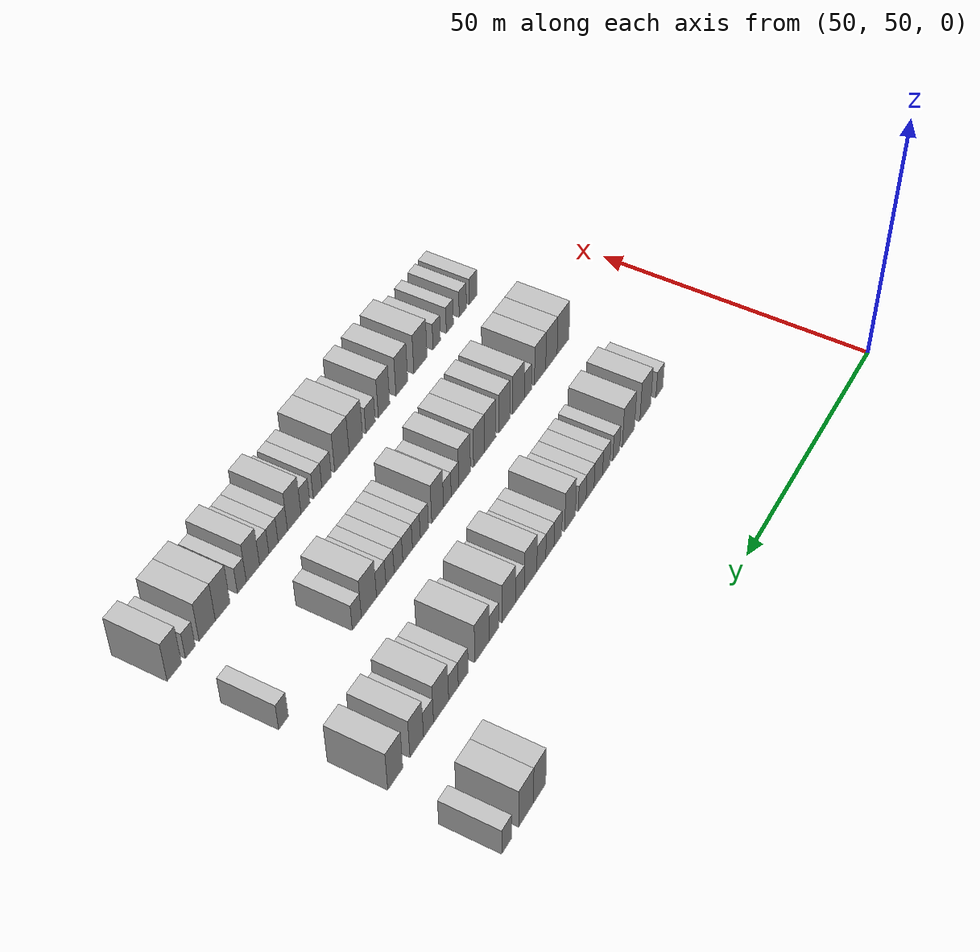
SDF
<sdf version="1.6">
 <world name="default">
  <model name="building_474">
   <static>1</static>
   <pose>63.0000 153.1992 0 0.000000 0.000000 0.000000</pose>
   <link name="link">
    <pose>0 0 4.50 0 0 0</pose>
    <collision name="collision"><geometry><box><size>10.0000 3.6725 9.0000</size></box></geometry></collision>
    <visual name="visual">
     <cast_shadows>0</cast_shadows>
     <geometry><box><size>10.0000 3.6725 9.0000</size></box></geometry>
     <material>
      <script>
       <uri>model://HANNAS_wall/materials/scripts</uri>
       <uri>model://HANNAS_wall/materials/textures</uri>
       <name>vrc/HANNAS_wall</name>
      </script>
     </material>
    </visual>
   </link>
  </model>
  <model name="building_475">
   <static>1</static>
   <pose>63.0000 157.1830 0 0.000000 0.000000 0.000000</pose>
   <link name="link">
    <pose>0 0 4.50 0 0 0</pose>
    <collision name="collision"><geometry><box><size>10.0000 4.2952 9.0000</size></box></geometry></collision>
    <visual name="visual">
     <cast_shadows>0</cast_shadows>
     <geometry><box><size>10.0000 4.2952 9.0000</size></box></geometry>
     <material>
      <script>
       <uri>model://HANNAS_wall/materials/scripts</uri>
       <uri>model://HANNAS_wall/materials/textures</uri>
       <name>vrc/HANNAS_wall</name>
      </script>
     </material>
    </visual>
   </link>
  </model>
  <model name="building_476">
   <static>1</static>
   <pose>63.0000 162.7637 0 0.000000 0.000000 0.000000</pose>
   <link name="link">
    <pose>0 0 3.00 0 0 0</pose>
    <collision name="collision"><geometry><box><size>10.0000 2.8661 6.0000</size></box></geometry></collision>
    <visual name="visual">
     <cast_shadows>0</cast_shadows>
     <geometry><box><size>10.0000 2.8661 6.0000</size></box></geometry>
     <material>
      <script>
       <uri>model://HANNAS_wall/materials/scripts</uri>
       <uri>model://HANNAS_wall/materials/textures</uri>
       <name>vrc/HANNAS_wall</name>
      </script>
     </material>
    </visual>
   </link>
  </model>
  <model name="building_628">
   <static>1</static>
   <pose>82.0000 75.2691 0 0.000000 0.000000 0.000000</pose>
   <link name="link">
    <pose>0 0 3.00 0 0 0</pose>
    <collision name="collision"><geometry><box><size>10.0000 2.6385 6.0000</size></box></geometry></collision>
    <visual name="visual">
     <cast_shadows>0</cast_shadows>
     <geometry><box><size>10.0000 2.6385 6.0000</size></box></geometry>
     <material>
      <script>
       <uri>model://HANNAS_wall/materials/scripts</uri>
       <uri>model://HANNAS_wall/materials/textures</uri>
       <name>vrc/HANNAS_wall</name>
      </script>
     </material>
    </visual>
   </link>
  </model>
  <model name="building_629">
   <static>1</static>
   <pose>82.0000 80.6000 0 0.000000 0.000000 0.000000</pose>
   <link name="link">
    <pose>0 0 4.50 0 0 0</pose>
    <collision name="collision"><geometry><box><size>10.0000 4.0234 9.0000</size></box></geometry></collision>
    <visual name="visual">
     <cast_shadows>0</cast_shadows>
     <geometry><box><size>10.0000 4.0234 9.0000</size></box></geometry>
     <material>
      <script>
       <uri>model://HANNAS_wall/materials/scripts</uri>
       <uri>model://HANNAS_wall/materials/textures</uri>
       <name>vrc/HANNAS_wall</name>
      </script>
     </material>
    </visual>
   </link>
  </model>
  <model name="building_630">
   <static>1</static>
   <pose>82.0000 86.8301 0 0.000000 0.000000 0.000000</pose>
   <link name="link">
    <pose>0 0 4.50 0 0 0</pose>
    <collision name="collision"><geometry><box><size>10.0000 4.4367 9.0000</size></box></geometry></collision>
    <visual name="visual">
     <cast_shadows>0</cast_shadows>
     <geometry><box><size>10.0000 4.4367 9.0000</size></box></geometry>
     <material>
      <script>
       <uri>model://HANNAS_wall/materials/scripts</uri>
       <uri>model://HANNAS_wall/materials/textures</uri>
       <name>vrc/HANNAS_wall</name>
      </script>
     </material>
    </visual>
   </link>
  </model>
  <model name="building_631">
   <static>1</static>
   <pose>82.0000 91.2812 0 0.000000 0.000000 0.000000</pose>
   <link name="link">
    <pose>0 0 3.00 0 0 0</pose>
    <collision name="collision"><geometry><box><size>10.0000 2.4657 6.0000</size></box></geometry></collision>
    <visual name="visual">
     <cast_shadows>0</cast_shadows>
     <geometry><box><size>10.0000 2.4657 6.0000</size></box></geometry>
     <material>
      <script>
       <uri>model://HANNAS_wall/materials/scripts</uri>
       <uri>model://HANNAS_wall/materials/textures</uri>
       <name>vrc/HANNAS_wall</name>
      </script>
     </material>
    </visual>
   </link>
  </model>
  <model name="building_632">
   <static>1</static>
   <pose>82.0000 94.8271 0 0.000000 0.000000 0.000000</pose>
   <link name="link">
    <pose>0 0 3.00 0 0 0</pose>
    <collision name="collision"><geometry><box><size>10.0000 2.6260 6.0000</size></box></geometry></collision>
    <visual name="visual">
     <cast_shadows>0</cast_shadows>
     <geometry><box><size>10.0000 2.6260 6.0000</size></box></geometry>
     <material>
      <script>
       <uri>model://HANNAS_wall/materials/scripts</uri>
       <uri>model://HANNAS_wall/materials/textures</uri>
       <name>vrc/HANNAS_wall</name>
      </script>
     </material>
    </visual>
   </link>
  </model>
  <model name="building_633">
   <static>1</static>
   <pose>82.0000 97.6266 0 0.000000 0.000000 0.000000</pose>
   <link name="link">
    <pose>0 0 3.00 0 0 0</pose>
    <collision name="collision"><geometry><box><size>10.0000 2.9730 6.0000</size></box></geometry></collision>
    <visual name="visual">
     <cast_shadows>0</cast_shadows>
     <geometry><box><size>10.0000 2.9730 6.0000</size></box></geometry>
     <material>
      <script>
       <uri>model://HANNAS_wall/materials/scripts</uri>
       <uri>model://HANNAS_wall/materials/textures</uri>
       <name>vrc/HANNAS_wall</name>
      </script>
     </material>
    </visual>
   </link>
  </model>
  <model name="building_634">
   <static>1</static>
   <pose>82.0000 100.5078 0 0.000000 0.000000 0.000000</pose>
   <link name="link">
    <pose>0 0 3.00 0 0 0</pose>
    <collision name="collision"><geometry><box><size>10.0000 2.7895 6.0000</size></box></geometry></collision>
    <visual name="visual">
     <cast_shadows>0</cast_shadows>
     <geometry><box><size>10.0000 2.7895 6.0000</size></box></geometry>
     <material>
      <script>
       <uri>model://HANNAS_wall/materials/scripts</uri>
       <uri>model://HANNAS_wall/materials/textures</uri>
       <name>vrc/HANNAS_wall</name>
      </script>
     </material>
    </visual>
   </link>
  </model>
  <model name="building_635">
   <static>1</static>
   <pose>82.0000 103.2406 0 0.000000 0.000000 0.000000</pose>
   <link name="link">
    <pose>0 0 3.00 0 0 0</pose>
    <collision name="collision"><geometry><box><size>10.0000 2.6761 6.0000</size></box></geometry></collision>
    <visual name="visual">
     <cast_shadows>0</cast_shadows>
     <geometry><box><size>10.0000 2.6761 6.0000</size></box></geometry>
     <material>
      <script>
       <uri>model://HANNAS_wall/materials/scripts</uri>
       <uri>model://HANNAS_wall/materials/textures</uri>
       <name>vrc/HANNAS_wall</name>
      </script>
     </material>
    </visual>
   </link>
  </model>
  <model name="building_636">
   <static>1</static>
   <pose>82.0000 107.3938 0 0.000000 0.000000 0.000000</pose>
   <link name="link">
    <pose>0 0 4.50 0 0 0</pose>
    <collision name="collision"><geometry><box><size>10.0000 3.6304 9.0000</size></box></geometry></collision>
    <visual name="visual">
     <cast_shadows>0</cast_shadows>
     <geometry><box><size>10.0000 3.6304 9.0000</size></box></geometry>
     <material>
      <script>
       <uri>model://HANNAS_wall/materials/scripts</uri>
       <uri>model://HANNAS_wall/materials/textures</uri>
       <name>vrc/HANNAS_wall</name>
      </script>
     </material>
    </visual>
   </link>
  </model>
  <model name="building_637">
   <static>1</static>
   <pose>82.0000 111.5008 0 0.000000 0.000000 0.000000</pose>
   <link name="link">
    <pose>0 0 3.00 0 0 0</pose>
    <collision name="collision"><geometry><box><size>10.0000 2.5835 6.0000</size></box></geometry></collision>
    <visual name="visual">
     <cast_shadows>0</cast_shadows>
     <geometry><box><size>10.0000 2.5835 6.0000</size></box></geometry>
     <material>
      <script>
       <uri>model://HANNAS_wall/materials/scripts</uri>
       <uri>model://HANNAS_wall/materials/textures</uri>
       <name>vrc/HANNAS_wall</name>
      </script>
     </material>
    </visual>
   </link>
  </model>
  <model name="building_638">
   <static>1</static>
   <pose>82.0000 114.1459 0 0.000000 0.000000 0.000000</pose>
   <link name="link">
    <pose>0 0 3.00 0 0 0</pose>
    <collision name="collision"><geometry><box><size>10.0000 2.7066 6.0000</size></box></geometry></collision>
    <visual name="visual">
     <cast_shadows>0</cast_shadows>
     <geometry><box><size>10.0000 2.7066 6.0000</size></box></geometry>
     <material>
      <script>
       <uri>model://HANNAS_wall/materials/scripts</uri>
       <uri>model://HANNAS_wall/materials/textures</uri>
       <name>vrc/HANNAS_wall</name>
      </script>
     </material>
    </visual>
   </link>
  </model>
  <model name="building_639">
   <static>1</static>
   <pose>82.0000 116.9561 0 0.000000 0.000000 0.000000</pose>
   <link name="link">
    <pose>0 0 3.00 0 0 0</pose>
    <collision name="collision"><geometry><box><size>10.0000 2.9138 6.0000</size></box></geometry></collision>
    <visual name="visual">
     <cast_shadows>0</cast_shadows>
     <geometry><box><size>10.0000 2.9138 6.0000</size></box></geometry>
     <material>
      <script>
       <uri>model://HANNAS_wall/materials/scripts</uri>
       <uri>model://HANNAS_wall/materials/textures</uri>
       <name>vrc/HANNAS_wall</name>
      </script>
     </material>
    </visual>
   </link>
  </model>
  <model name="building_640">
   <static>1</static>
   <pose>82.0000 120.3952 0 0.000000 0.000000 0.000000</pose>
   <link name="link">
    <pose>0 0 4.50 0 0 0</pose>
    <collision name="collision"><geometry><box><size>10.0000 3.9644 9.0000</size></box></geometry></collision>
    <visual name="visual">
     <cast_shadows>0</cast_shadows>
     <geometry><box><size>10.0000 3.9644 9.0000</size></box></geometry>
     <material>
      <script>
       <uri>model://HANNAS_wall/materials/scripts</uri>
       <uri>model://HANNAS_wall/materials/textures</uri>
       <name>vrc/HANNAS_wall</name>
      </script>
     </material>
    </visual>
   </link>
  </model>
  <model name="building_641">
   <static>1</static>
   <pose>82.0000 123.7570 0 0.000000 0.000000 0.000000</pose>
   <link name="link">
    <pose>0 0 3.00 0 0 0</pose>
    <collision name="collision"><geometry><box><size>10.0000 2.7593 6.0000</size></box></geometry></collision>
    <visual name="visual">
     <cast_shadows>0</cast_shadows>
     <geometry><box><size>10.0000 2.7593 6.0000</size></box></geometry>
     <material>
      <script>
       <uri>model://HANNAS_wall/materials/scripts</uri>
       <uri>model://HANNAS_wall/materials/textures</uri>
       <name>vrc/HANNAS_wall</name>
      </script>
     </material>
    </visual>
   </link>
  </model>
  <model name="building_642">
   <static>1</static>
   <pose>82.0000 127.3009 0 0.000000 0.000000 0.000000</pose>
   <link name="link">
    <pose>0 0 4.50 0 0 0</pose>
    <collision name="collision"><geometry><box><size>10.0000 4.3286 9.0000</size></box></geometry></collision>
    <visual name="visual">
     <cast_shadows>0</cast_shadows>
     <geometry><box><size>10.0000 4.3286 9.0000</size></box></geometry>
     <material>
      <script>
       <uri>model://HANNAS_wall/materials/scripts</uri>
       <uri>model://HANNAS_wall/materials/textures</uri>
       <name>vrc/HANNAS_wall</name>
      </script>
     </material>
    </visual>
   </link>
  </model>
  <model name="building_643">
   <static>1</static>
   <pose>82.0000 131.9573 0 0.000000 0.000000 0.000000</pose>
   <link name="link">
    <pose>0 0 3.00 0 0 0</pose>
    <collision name="collision"><geometry><box><size>10.0000 2.9843 6.0000</size></box></geometry></collision>
    <visual name="visual">
     <cast_shadows>0</cast_shadows>
     <geometry><box><size>10.0000 2.9843 6.0000</size></box></geometry>
     <material>
      <script>
       <uri>model://HANNAS_wall/materials/scripts</uri>
       <uri>model://HANNAS_wall/materials/textures</uri>
       <name>vrc/HANNAS_wall</name>
      </script>
     </material>
    </visual>
   </link>
  </model>
  <model name="building_644">
   <static>1</static>
   <pose>82.0000 135.6350 0 0.000000 0.000000 0.000000</pose>
   <link name="link">
    <pose>0 0 4.50 0 0 0</pose>
    <collision name="collision"><geometry><box><size>10.0000 4.3710 9.0000</size></box></geometry></collision>
    <visual name="visual">
     <cast_shadows>0</cast_shadows>
     <geometry><box><size>10.0000 4.3710 9.0000</size></box></geometry>
     <material>
      <script>
       <uri>model://HANNAS_wall/materials/scripts</uri>
       <uri>model://HANNAS_wall/materials/textures</uri>
       <name>vrc/HANNAS_wall</name>
      </script>
     </material>
    </visual>
   </link>
  </model>
  <model name="building_645">
   <static>1</static>
   <pose>82.0000 141.3121 0 0.000000 0.000000 0.000000</pose>
   <link name="link">
    <pose>0 0 3.00 0 0 0</pose>
    <collision name="collision"><geometry><box><size>10.0000 2.9831 6.0000</size></box></geometry></collision>
    <visual name="visual">
     <cast_shadows>0</cast_shadows>
     <geometry><box><size>10.0000 2.9831 6.0000</size></box></geometry>
     <material>
      <script>
       <uri>model://HANNAS_wall/materials/scripts</uri>
       <uri>model://HANNAS_wall/materials/textures</uri>
       <name>vrc/HANNAS_wall</name>
      </script>
     </material>
    </visual>
   </link>
  </model>
  <model name="building_646">
   <static>1</static>
   <pose>82.0000 144.2156 0 0.000000 0.000000 0.000000</pose>
   <link name="link">
    <pose>0 0 3.00 0 0 0</pose>
    <collision name="collision"><geometry><box><size>10.0000 2.8239 6.0000</size></box></geometry></collision>
    <visual name="visual">
     <cast_shadows>0</cast_shadows>
     <geometry><box><size>10.0000 2.8239 6.0000</size></box></geometry>
     <material>
      <script>
       <uri>model://HANNAS_wall/materials/scripts</uri>
       <uri>model://HANNAS_wall/materials/textures</uri>
       <name>vrc/HANNAS_wall</name>
      </script>
     </material>
    </visual>
   </link>
  </model>
  <model name="building_647">
   <static>1</static>
   <pose>82.0000 147.8264 0 0.000000 0.000000 0.000000</pose>
   <link name="link">
    <pose>0 0 4.50 0 0 0</pose>
    <collision name="collision"><geometry><box><size>10.0000 4.3977 9.0000</size></box></geometry></collision>
    <visual name="visual">
     <cast_shadows>0</cast_shadows>
     <geometry><box><size>10.0000 4.3977 9.0000</size></box></geometry>
     <material>
      <script>
       <uri>model://HANNAS_wall/materials/scripts</uri>
       <uri>model://HANNAS_wall/materials/textures</uri>
       <name>vrc/HANNAS_wall</name>
      </script>
     </material>
    </visual>
   </link>
  </model>
  <model name="building_648">
   <static>1</static>
   <pose>82.0000 151.4515 0 0.000000 0.000000 0.000000</pose>
   <link name="link">
    <pose>0 0 3.00 0 0 0</pose>
    <collision name="collision"><geometry><box><size>10.0000 2.8525 6.0000</size></box></geometry></collision>
    <visual name="visual">
     <cast_shadows>0</cast_shadows>
     <geometry><box><size>10.0000 2.8525 6.0000</size></box></geometry>
     <material>
      <script>
       <uri>model://HANNAS_wall/materials/scripts</uri>
       <uri>model://HANNAS_wall/materials/textures</uri>
       <name>vrc/HANNAS_wall</name>
      </script>
     </material>
    </visual>
   </link>
  </model>
  <model name="building_649">
   <static>1</static>
   <pose>82.0000 154.7973 0 0.000000 0.000000 0.000000</pose>
   <link name="link">
    <pose>0 0 4.50 0 0 0</pose>
    <collision name="collision"><geometry><box><size>10.0000 3.8392 9.0000</size></box></geometry></collision>
    <visual name="visual">
     <cast_shadows>0</cast_shadows>
     <geometry><box><size>10.0000 3.8392 9.0000</size></box></geometry>
     <material>
      <script>
       <uri>model://HANNAS_wall/materials/scripts</uri>
       <uri>model://HANNAS_wall/materials/textures</uri>
       <name>vrc/HANNAS_wall</name>
      </script>
     </material>
    </visual>
   </link>
  </model>
  <model name="building_650">
   <static>1</static>
   <pose>82.0000 160.7923 0 0.000000 0.000000 0.000000</pose>
   <link name="link">
    <pose>0 0 4.50 0 0 0</pose>
    <collision name="collision"><geometry><box><size>10.0000 4.1509 9.0000</size></box></geometry></collision>
    <visual name="visual">
     <cast_shadows>0</cast_shadows>
     <geometry><box><size>10.0000 4.1509 9.0000</size></box></geometry>
     <material>
      <script>
       <uri>model://HANNAS_wall/materials/scripts</uri>
       <uri>model://HANNAS_wall/materials/textures</uri>
       <name>vrc/HANNAS_wall</name>
      </script>
     </material>
    </visual>
   </link>
  </model>
  <model name="building_803">
   <static>1</static>
   <pose>101.0000 73.3802 0 0.000000 0.000000 0.000000</pose>
   <link name="link">
    <pose>0 0 4.50 0 0 0</pose>
    <collision name="collision"><geometry><box><size>10.0000 4.3532 9.0000</size></box></geometry></collision>
    <visual name="visual">
     <cast_shadows>0</cast_shadows>
     <geometry><box><size>10.0000 4.3532 9.0000</size></box></geometry>
     <material>
      <script>
       <uri>model://HANNAS_wall/materials/scripts</uri>
       <uri>model://HANNAS_wall/materials/textures</uri>
       <name>vrc/HANNAS_wall</name>
      </script>
     </material>
    </visual>
   </link>
  </model>
  <model name="building_804">
   <static>1</static>
   <pose>101.0000 77.6026 0 0.000000 0.000000 0.000000</pose>
   <link name="link">
    <pose>0 0 4.50 0 0 0</pose>
    <collision name="collision"><geometry><box><size>10.0000 4.0915 9.0000</size></box></geometry></collision>
    <visual name="visual">
     <cast_shadows>0</cast_shadows>
     <geometry><box><size>10.0000 4.0915 9.0000</size></box></geometry>
     <material>
      <script>
       <uri>model://HANNAS_wall/materials/scripts</uri>
       <uri>model://HANNAS_wall/materials/textures</uri>
       <name>vrc/HANNAS_wall</name>
      </script>
     </material>
    </visual>
   </link>
  </model>
  <model name="building_805">
   <static>1</static>
   <pose>101.0000 81.6471 0 0.000000 0.000000 0.000000</pose>
   <link name="link">
    <pose>0 0 4.50 0 0 0</pose>
    <collision name="collision"><geometry><box><size>10.0000 3.9977 9.0000</size></box></geometry></collision>
    <visual name="visual">
     <cast_shadows>0</cast_shadows>
     <geometry><box><size>10.0000 3.9977 9.0000</size></box></geometry>
     <material>
      <script>
       <uri>model://HANNAS_wall/materials/scripts</uri>
       <uri>model://HANNAS_wall/materials/textures</uri>
       <name>vrc/HANNAS_wall</name>
      </script>
     </material>
    </visual>
   </link>
  </model>
  <model name="building_806">
   <static>1</static>
   <pose>101.0000 85.9104 0 0.000000 0.000000 0.000000</pose>
   <link name="link">
    <pose>0 0 3.00 0 0 0</pose>
    <collision name="collision"><geometry><box><size>10.0000 2.5288 6.0000</size></box></geometry></collision>
    <visual name="visual">
     <cast_shadows>0</cast_shadows>
     <geometry><box><size>10.0000 2.5288 6.0000</size></box></geometry>
     <material>
      <script>
       <uri>model://HANNAS_wall/materials/scripts</uri>
       <uri>model://HANNAS_wall/materials/textures</uri>
       <name>vrc/HANNAS_wall</name>
      </script>
     </material>
    </visual>
   </link>
  </model>
  <model name="building_807">
   <static>1</static>
   <pose>101.0000 89.1816 0 0.000000 0.000000 0.000000</pose>
   <link name="link">
    <pose>0 0 4.50 0 0 0</pose>
    <collision name="collision"><geometry><box><size>10.0000 4.0136 9.0000</size></box></geometry></collision>
    <visual name="visual">
     <cast_shadows>0</cast_shadows>
     <geometry><box><size>10.0000 4.0136 9.0000</size></box></geometry>
     <material>
      <script>
       <uri>model://HANNAS_wall/materials/scripts</uri>
       <uri>model://HANNAS_wall/materials/textures</uri>
       <name>vrc/HANNAS_wall</name>
      </script>
     </material>
    </visual>
   </link>
  </model>
  <model name="building_808">
   <static>1</static>
   <pose>101.0000 94.0507 0 0.000000 0.000000 0.000000</pose>
   <link name="link">
    <pose>0 0 4.50 0 0 0</pose>
    <collision name="collision"><geometry><box><size>10.0000 3.7245 9.0000</size></box></geometry></collision>
    <visual name="visual">
     <cast_shadows>0</cast_shadows>
     <geometry><box><size>10.0000 3.7245 9.0000</size></box></geometry>
     <material>
      <script>
       <uri>model://HANNAS_wall/materials/scripts</uri>
       <uri>model://HANNAS_wall/materials/textures</uri>
       <name>vrc/HANNAS_wall</name>
      </script>
     </material>
    </visual>
   </link>
  </model>
  <model name="building_809">
   <static>1</static>
   <pose>101.0000 98.8156 0 0.000000 0.000000 0.000000</pose>
   <link name="link">
    <pose>0 0 4.50 0 0 0</pose>
    <collision name="collision"><geometry><box><size>10.0000 3.8054 9.0000</size></box></geometry></collision>
    <visual name="visual">
     <cast_shadows>0</cast_shadows>
     <geometry><box><size>10.0000 3.8054 9.0000</size></box></geometry>
     <material>
      <script>
       <uri>model://HANNAS_wall/materials/scripts</uri>
       <uri>model://HANNAS_wall/materials/textures</uri>
       <name>vrc/HANNAS_wall</name>
      </script>
     </material>
    </visual>
   </link>
  </model>
  <model name="building_810">
   <static>1</static>
   <pose>101.0000 102.5367 0 0.000000 0.000000 0.000000</pose>
   <link name="link">
    <pose>0 0 4.50 0 0 0</pose>
    <collision name="collision"><geometry><box><size>10.0000 3.6369 9.0000</size></box></geometry></collision>
    <visual name="visual">
     <cast_shadows>0</cast_shadows>
     <geometry><box><size>10.0000 3.6369 9.0000</size></box></geometry>
     <material>
      <script>
       <uri>model://HANNAS_wall/materials/scripts</uri>
       <uri>model://HANNAS_wall/materials/textures</uri>
       <name>vrc/HANNAS_wall</name>
      </script>
     </material>
    </visual>
   </link>
  </model>
  <model name="building_811">
   <static>1</static>
   <pose>101.0000 107.2394 0 0.000000 0.000000 0.000000</pose>
   <link name="link">
    <pose>0 0 4.50 0 0 0</pose>
    <collision name="collision"><geometry><box><size>10.0000 3.7685 9.0000</size></box></geometry></collision>
    <visual name="visual">
     <cast_shadows>0</cast_shadows>
     <geometry><box><size>10.0000 3.7685 9.0000</size></box></geometry>
     <material>
      <script>
       <uri>model://HANNAS_wall/materials/scripts</uri>
       <uri>model://HANNAS_wall/materials/textures</uri>
       <name>vrc/HANNAS_wall</name>
      </script>
     </material>
    </visual>
   </link>
  </model>
  <model name="building_812">
   <static>1</static>
   <pose>101.0000 110.3523 0 0.000000 0.000000 0.000000</pose>
   <link name="link">
    <pose>0 0 3.00 0 0 0</pose>
    <collision name="collision"><geometry><box><size>10.0000 2.4574 6.0000</size></box></geometry></collision>
    <visual name="visual">
     <cast_shadows>0</cast_shadows>
     <geometry><box><size>10.0000 2.4574 6.0000</size></box></geometry>
     <material>
      <script>
       <uri>model://HANNAS_wall/materials/scripts</uri>
       <uri>model://HANNAS_wall/materials/textures</uri>
       <name>vrc/HANNAS_wall</name>
      </script>
     </material>
    </visual>
   </link>
  </model>
  <model name="building_813">
   <static>1</static>
   <pose>101.0000 112.7902 0 0.000000 0.000000 0.000000</pose>
   <link name="link">
    <pose>0 0 3.00 0 0 0</pose>
    <collision name="collision"><geometry><box><size>10.0000 2.4182 6.0000</size></box></geometry></collision>
    <visual name="visual">
     <cast_shadows>0</cast_shadows>
     <geometry><box><size>10.0000 2.4182 6.0000</size></box></geometry>
     <material>
      <script>
       <uri>model://HANNAS_wall/materials/scripts</uri>
       <uri>model://HANNAS_wall/materials/textures</uri>
       <name>vrc/HANNAS_wall</name>
      </script>
     </material>
    </visual>
   </link>
  </model>
  <model name="building_814">
   <static>1</static>
   <pose>101.0000 115.8644 0 0.000000 0.000000 0.000000</pose>
   <link name="link">
    <pose>0 0 4.50 0 0 0</pose>
    <collision name="collision"><geometry><box><size>10.0000 3.7302 9.0000</size></box></geometry></collision>
    <visual name="visual">
     <cast_shadows>0</cast_shadows>
     <geometry><box><size>10.0000 3.7302 9.0000</size></box></geometry>
     <material>
      <script>
       <uri>model://HANNAS_wall/materials/scripts</uri>
       <uri>model://HANNAS_wall/materials/textures</uri>
       <name>vrc/HANNAS_wall</name>
      </script>
     </material>
    </visual>
   </link>
  </model>
  <model name="building_815">
   <static>1</static>
   <pose>101.0000 119.9969 0 0.000000 0.000000 0.000000</pose>
   <link name="link">
    <pose>0 0 3.00 0 0 0</pose>
    <collision name="collision"><geometry><box><size>10.0000 2.5347 6.0000</size></box></geometry></collision>
    <visual name="visual">
     <cast_shadows>0</cast_shadows>
     <geometry><box><size>10.0000 2.5347 6.0000</size></box></geometry>
     <material>
      <script>
       <uri>model://HANNAS_wall/materials/scripts</uri>
       <uri>model://HANNAS_wall/materials/textures</uri>
       <name>vrc/HANNAS_wall</name>
      </script>
     </material>
    </visual>
   </link>
  </model>
  <model name="building_816">
   <static>1</static>
   <pose>101.0000 122.4655 0 0.000000 0.000000 0.000000</pose>
   <link name="link">
    <pose>0 0 3.00 0 0 0</pose>
    <collision name="collision"><geometry><box><size>10.0000 2.4025 6.0000</size></box></geometry></collision>
    <visual name="visual">
     <cast_shadows>0</cast_shadows>
     <geometry><box><size>10.0000 2.4025 6.0000</size></box></geometry>
     <material>
      <script>
       <uri>model://HANNAS_wall/materials/scripts</uri>
       <uri>model://HANNAS_wall/materials/textures</uri>
       <name>vrc/HANNAS_wall</name>
      </script>
     </material>
    </visual>
   </link>
  </model>
  <model name="building_817">
   <static>1</static>
   <pose>101.0000 125.1347 0 0.000000 0.000000 0.000000</pose>
   <link name="link">
    <pose>0 0 3.00 0 0 0</pose>
    <collision name="collision"><geometry><box><size>10.0000 2.9360 6.0000</size></box></geometry></collision>
    <visual name="visual">
     <cast_shadows>0</cast_shadows>
     <geometry><box><size>10.0000 2.9360 6.0000</size></box></geometry>
     <material>
      <script>
       <uri>model://HANNAS_wall/materials/scripts</uri>
       <uri>model://HANNAS_wall/materials/textures</uri>
       <name>vrc/HANNAS_wall</name>
      </script>
     </material>
    </visual>
   </link>
  </model>
  <model name="building_818">
   <static>1</static>
   <pose>101.0000 127.9028 0 0.000000 0.000000 0.000000</pose>
   <link name="link">
    <pose>0 0 3.00 0 0 0</pose>
    <collision name="collision"><geometry><box><size>10.0000 2.6002 6.0000</size></box></geometry></collision>
    <visual name="visual">
     <cast_shadows>0</cast_shadows>
     <geometry><box><size>10.0000 2.6002 6.0000</size></box></geometry>
     <material>
      <script>
       <uri>model://HANNAS_wall/materials/scripts</uri>
       <uri>model://HANNAS_wall/materials/textures</uri>
       <name>vrc/HANNAS_wall</name>
      </script>
     </material>
    </visual>
   </link>
  </model>
  <model name="building_819">
   <static>1</static>
   <pose>101.0000 130.4240 0 0.000000 0.000000 0.000000</pose>
   <link name="link">
    <pose>0 0 3.00 0 0 0</pose>
    <collision name="collision"><geometry><box><size>10.0000 2.4423 6.0000</size></box></geometry></collision>
    <visual name="visual">
     <cast_shadows>0</cast_shadows>
     <geometry><box><size>10.0000 2.4423 6.0000</size></box></geometry>
     <material>
      <script>
       <uri>model://HANNAS_wall/materials/scripts</uri>
       <uri>model://HANNAS_wall/materials/textures</uri>
       <name>vrc/HANNAS_wall</name>
      </script>
     </material>
    </visual>
   </link>
  </model>
  <model name="building_820">
   <static>1</static>
   <pose>101.0000 133.0305 0 0.000000 0.000000 0.000000</pose>
   <link name="link">
    <pose>0 0 3.00 0 0 0</pose>
    <collision name="collision"><geometry><box><size>10.0000 2.7706 6.0000</size></box></geometry></collision>
    <visual name="visual">
     <cast_shadows>0</cast_shadows>
     <geometry><box><size>10.0000 2.7706 6.0000</size></box></geometry>
     <material>
      <script>
       <uri>model://HANNAS_wall/materials/scripts</uri>
       <uri>model://HANNAS_wall/materials/textures</uri>
       <name>vrc/HANNAS_wall</name>
      </script>
     </material>
    </visual>
   </link>
  </model>
  <model name="building_821">
   <static>1</static>
   <pose>101.0000 136.6137 0 0.000000 0.000000 0.000000</pose>
   <link name="link">
    <pose>0 0 4.50 0 0 0</pose>
    <collision name="collision"><geometry><box><size>10.0000 4.3959 9.0000</size></box></geometry></collision>
    <visual name="visual">
     <cast_shadows>0</cast_shadows>
     <geometry><box><size>10.0000 4.3959 9.0000</size></box></geometry>
     <material>
      <script>
       <uri>model://HANNAS_wall/materials/scripts</uri>
       <uri>model://HANNAS_wall/materials/textures</uri>
       <name>vrc/HANNAS_wall</name>
      </script>
     </material>
    </visual>
   </link>
  </model>
  <model name="building_822">
   <static>1</static>
   <pose>101.0000 140.1268 0 0.000000 0.000000 0.000000</pose>
   <link name="link">
    <pose>0 0 3.00 0 0 0</pose>
    <collision name="collision"><geometry><box><size>10.0000 2.6303 6.0000</size></box></geometry></collision>
    <visual name="visual">
     <cast_shadows>0</cast_shadows>
     <geometry><box><size>10.0000 2.6303 6.0000</size></box></geometry>
     <material>
      <script>
       <uri>model://HANNAS_wall/materials/scripts</uri>
       <uri>model://HANNAS_wall/materials/textures</uri>
       <name>vrc/HANNAS_wall</name>
      </script>
     </material>
    </visual>
   </link>
  </model>
  <model name="building_823">
   <static>1</static>
   <pose>101.0000 160.3386 0 0.000000 0.000000 0.000000</pose>
   <link name="link">
    <pose>0 0 3.00 0 0 0</pose>
    <collision name="collision"><geometry><box><size>10.0000 2.5978 6.0000</size></box></geometry></collision>
    <visual name="visual">
     <cast_shadows>0</cast_shadows>
     <geometry><box><size>10.0000 2.5978 6.0000</size></box></geometry>
     <material>
      <script>
       <uri>model://HANNAS_wall/materials/scripts</uri>
       <uri>model://HANNAS_wall/materials/textures</uri>
       <name>vrc/HANNAS_wall</name>
      </script>
     </material>
    </visual>
   </link>
  </model>
  <model name="building_977">
   <static>1</static>
   <pose>120.0000 70.5837 0 0.000000 0.000000 0.000000</pose>
   <link name="link">
    <pose>0 0 3.00 0 0 0</pose>
    <collision name="collision"><geometry><box><size>10.0000 2.7743 6.0000</size></box></geometry></collision>
    <visual name="visual">
     <cast_shadows>0</cast_shadows>
     <geometry><box><size>10.0000 2.7743 6.0000</size></box></geometry>
     <material>
      <script>
       <uri>model://HANNAS_wall/materials/scripts</uri>
       <uri>model://HANNAS_wall/materials/textures</uri>
       <name>vrc/HANNAS_wall</name>
      </script>
     </material>
    </visual>
   </link>
  </model>
  <model name="building_978">
   <static>1</static>
   <pose>120.0000 74.2451 0 0.000000 0.000000 0.000000</pose>
   <link name="link">
    <pose>0 0 3.00 0 0 0</pose>
    <collision name="collision"><geometry><box><size>10.0000 2.5485 6.0000</size></box></geometry></collision>
    <visual name="visual">
     <cast_shadows>0</cast_shadows>
     <geometry><box><size>10.0000 2.5485 6.0000</size></box></geometry>
     <material>
      <script>
       <uri>model://HANNAS_wall/materials/scripts</uri>
       <uri>model://HANNAS_wall/materials/textures</uri>
       <name>vrc/HANNAS_wall</name>
      </script>
     </material>
    </visual>
   </link>
  </model>
  <model name="building_979">
   <static>1</static>
   <pose>120.0000 78.7446 0 0.000000 0.000000 0.000000</pose>
   <link name="link">
    <pose>0 0 3.00 0 0 0</pose>
    <collision name="collision"><geometry><box><size>10.0000 2.4505 6.0000</size></box></geometry></collision>
    <visual name="visual">
     <cast_shadows>0</cast_shadows>
     <geometry><box><size>10.0000 2.4505 6.0000</size></box></geometry>
     <material>
      <script>
       <uri>model://HANNAS_wall/materials/scripts</uri>
       <uri>model://HANNAS_wall/materials/textures</uri>
       <name>vrc/HANNAS_wall</name>
      </script>
     </material>
    </visual>
   </link>
  </model>
  <model name="building_980">
   <static>1</static>
   <pose>120.0000 83.2295 0 0.000000 0.000000 0.000000</pose>
   <link name="link">
    <pose>0 0 3.00 0 0 0</pose>
    <collision name="collision"><geometry><box><size>10.0000 2.5194 6.0000</size></box></geometry></collision>
    <visual name="visual">
     <cast_shadows>0</cast_shadows>
     <geometry><box><size>10.0000 2.5194 6.0000</size></box></geometry>
     <material>
      <script>
       <uri>model://HANNAS_wall/materials/scripts</uri>
       <uri>model://HANNAS_wall/materials/textures</uri>
       <name>vrc/HANNAS_wall</name>
      </script>
     </material>
    </visual>
   </link>
  </model>
  <model name="building_981">
   <static>1</static>
   <pose>120.0000 88.6934 0 0.000000 0.000000 0.000000</pose>
   <link name="link">
    <pose>0 0 4.50 0 0 0</pose>
    <collision name="collision"><geometry><box><size>10.0000 4.4084 9.0000</size></box></geometry></collision>
    <visual name="visual">
     <cast_shadows>0</cast_shadows>
     <geometry><box><size>10.0000 4.4084 9.0000</size></box></geometry>
     <material>
      <script>
       <uri>model://HANNAS_wall/materials/scripts</uri>
       <uri>model://HANNAS_wall/materials/textures</uri>
       <name>vrc/HANNAS_wall</name>
      </script>
     </material>
    </visual>
   </link>
  </model>
  <model name="building_982">
   <static>1</static>
   <pose>120.0000 94.8195 0 0.000000 0.000000 0.000000</pose>
   <link name="link">
    <pose>0 0 4.50 0 0 0</pose>
    <collision name="collision"><geometry><box><size>10.0000 3.8437 9.0000</size></box></geometry></collision>
    <visual name="visual">
     <cast_shadows>0</cast_shadows>
     <geometry><box><size>10.0000 3.8437 9.0000</size></box></geometry>
     <material>
      <script>
       <uri>model://HANNAS_wall/materials/scripts</uri>
       <uri>model://HANNAS_wall/materials/textures</uri>
       <name>vrc/HANNAS_wall</name>
      </script>
     </material>
    </visual>
   </link>
  </model>
  <model name="building_983">
   <static>1</static>
   <pose>120.0000 100.5583 0 0.000000 0.000000 0.000000</pose>
   <link name="link">
    <pose>0 0 4.50 0 0 0</pose>
    <collision name="collision"><geometry><box><size>10.0000 3.6339 9.0000</size></box></geometry></collision>
    <visual name="visual">
     <cast_shadows>0</cast_shadows>
     <geometry><box><size>10.0000 3.6339 9.0000</size></box></geometry>
     <material>
      <script>
       <uri>model://HANNAS_wall/materials/scripts</uri>
       <uri>model://HANNAS_wall/materials/textures</uri>
       <name>vrc/HANNAS_wall</name>
      </script>
     </material>
    </visual>
   </link>
  </model>
  <model name="building_984">
   <static>1</static>
   <pose>120.0000 104.8509 0 0.000000 0.000000 0.000000</pose>
   <link name="link">
    <pose>0 0 3.00 0 0 0</pose>
    <collision name="collision"><geometry><box><size>10.0000 2.9512 6.0000</size></box></geometry></collision>
    <visual name="visual">
     <cast_shadows>0</cast_shadows>
     <geometry><box><size>10.0000 2.9512 6.0000</size></box></geometry>
     <material>
      <script>
       <uri>model://HANNAS_wall/materials/scripts</uri>
       <uri>model://HANNAS_wall/materials/textures</uri>
       <name>vrc/HANNAS_wall</name>
      </script>
     </material>
    </visual>
   </link>
  </model>
  <model name="building_985">
   <static>1</static>
   <pose>120.0000 109.4062 0 0.000000 0.000000 0.000000</pose>
   <link name="link">
    <pose>0 0 4.50 0 0 0</pose>
    <collision name="collision"><geometry><box><size>10.0000 4.1594 9.0000</size></box></geometry></collision>
    <visual name="visual">
     <cast_shadows>0</cast_shadows>
     <geometry><box><size>10.0000 4.1594 9.0000</size></box></geometry>
     <material>
      <script>
       <uri>model://HANNAS_wall/materials/scripts</uri>
       <uri>model://HANNAS_wall/materials/textures</uri>
       <name>vrc/HANNAS_wall</name>
      </script>
     </material>
    </visual>
   </link>
  </model>
  <model name="building_986">
   <static>1</static>
   <pose>120.0000 113.6858 0 0.000000 0.000000 0.000000</pose>
   <link name="link">
    <pose>0 0 4.50 0 0 0</pose>
    <collision name="collision"><geometry><box><size>10.0000 4.3997 9.0000</size></box></geometry></collision>
    <visual name="visual">
     <cast_shadows>0</cast_shadows>
     <geometry><box><size>10.0000 4.3997 9.0000</size></box></geometry>
     <material>
      <script>
       <uri>model://HANNAS_wall/materials/scripts</uri>
       <uri>model://HANNAS_wall/materials/textures</uri>
       <name>vrc/HANNAS_wall</name>
      </script>
     </material>
    </visual>
   </link>
  </model>
  <model name="building_987">
   <static>1</static>
   <pose>120.0000 118.3093 0 0.000000 0.000000 0.000000</pose>
   <link name="link">
    <pose>0 0 3.00 0 0 0</pose>
    <collision name="collision"><geometry><box><size>10.0000 2.8474 6.0000</size></box></geometry></collision>
    <visual name="visual">
     <cast_shadows>0</cast_shadows>
     <geometry><box><size>10.0000 2.8474 6.0000</size></box></geometry>
     <material>
      <script>
       <uri>model://HANNAS_wall/materials/scripts</uri>
       <uri>model://HANNAS_wall/materials/textures</uri>
       <name>vrc/HANNAS_wall</name>
      </script>
     </material>
    </visual>
   </link>
  </model>
  <model name="building_988">
   <static>1</static>
   <pose>120.0000 121.0084 0 0.000000 0.000000 0.000000</pose>
   <link name="link">
    <pose>0 0 3.00 0 0 0</pose>
    <collision name="collision"><geometry><box><size>10.0000 2.5507 6.0000</size></box></geometry></collision>
    <visual name="visual">
     <cast_shadows>0</cast_shadows>
     <geometry><box><size>10.0000 2.5507 6.0000</size></box></geometry>
     <material>
      <script>
       <uri>model://HANNAS_wall/materials/scripts</uri>
       <uri>model://HANNAS_wall/materials/textures</uri>
       <name>vrc/HANNAS_wall</name>
      </script>
     </material>
    </visual>
   </link>
  </model>
  <model name="building_989">
   <static>1</static>
   <pose>120.0000 124.5923 0 0.000000 0.000000 0.000000</pose>
   <link name="link">
    <pose>0 0 3.00 0 0 0</pose>
    <collision name="collision"><geometry><box><size>10.0000 2.6171 6.0000</size></box></geometry></collision>
    <visual name="visual">
     <cast_shadows>0</cast_shadows>
     <geometry><box><size>10.0000 2.6171 6.0000</size></box></geometry>
     <material>
      <script>
       <uri>model://HANNAS_wall/materials/scripts</uri>
       <uri>model://HANNAS_wall/materials/textures</uri>
       <name>vrc/HANNAS_wall</name>
      </script>
     </material>
    </visual>
   </link>
  </model>
  <model name="building_990">
   <static>1</static>
   <pose>120.0000 127.8463 0 0.000000 0.000000 0.000000</pose>
   <link name="link">
    <pose>0 0 4.50 0 0 0</pose>
    <collision name="collision"><geometry><box><size>10.0000 3.8909 9.0000</size></box></geometry></collision>
    <visual name="visual">
     <cast_shadows>0</cast_shadows>
     <geometry><box><size>10.0000 3.8909 9.0000</size></box></geometry>
     <material>
      <script>
       <uri>model://HANNAS_wall/materials/scripts</uri>
       <uri>model://HANNAS_wall/materials/textures</uri>
       <name>vrc/HANNAS_wall</name>
      </script>
     </material>
    </visual>
   </link>
  </model>
  <model name="building_991">
   <static>1</static>
   <pose>120.0000 131.1356 0 0.000000 0.000000 0.000000</pose>
   <link name="link">
    <pose>0 0 3.00 0 0 0</pose>
    <collision name="collision"><geometry><box><size>10.0000 2.6877 6.0000</size></box></geometry></collision>
    <visual name="visual">
     <cast_shadows>0</cast_shadows>
     <geometry><box><size>10.0000 2.6877 6.0000</size></box></geometry>
     <material>
      <script>
       <uri>model://HANNAS_wall/materials/scripts</uri>
       <uri>model://HANNAS_wall/materials/textures</uri>
       <name>vrc/HANNAS_wall</name>
      </script>
     </material>
    </visual>
   </link>
  </model>
  <model name="building_992">
   <static>1</static>
   <pose>120.0000 133.7806 0 0.000000 0.000000 0.000000</pose>
   <link name="link">
    <pose>0 0 3.00 0 0 0</pose>
    <collision name="collision"><geometry><box><size>10.0000 2.6022 6.0000</size></box></geometry></collision>
    <visual name="visual">
     <cast_shadows>0</cast_shadows>
     <geometry><box><size>10.0000 2.6022 6.0000</size></box></geometry>
     <material>
      <script>
       <uri>model://HANNAS_wall/materials/scripts</uri>
       <uri>model://HANNAS_wall/materials/textures</uri>
       <name>vrc/HANNAS_wall</name>
      </script>
     </material>
    </visual>
   </link>
  </model>
  <model name="building_993">
   <static>1</static>
   <pose>120.0000 136.3842 0 0.000000 0.000000 0.000000</pose>
   <link name="link">
    <pose>0 0 3.00 0 0 0</pose>
    <collision name="collision"><geometry><box><size>10.0000 2.6050 6.0000</size></box></geometry></collision>
    <visual name="visual">
     <cast_shadows>0</cast_shadows>
     <geometry><box><size>10.0000 2.6050 6.0000</size></box></geometry>
     <material>
      <script>
       <uri>model://HANNAS_wall/materials/scripts</uri>
       <uri>model://HANNAS_wall/materials/textures</uri>
       <name>vrc/HANNAS_wall</name>
      </script>
     </material>
    </visual>
   </link>
  </model>
  <model name="building_994">
   <static>1</static>
   <pose>120.0000 139.5253 0 0.000000 0.000000 0.000000</pose>
   <link name="link">
    <pose>0 0 4.50 0 0 0</pose>
    <collision name="collision"><geometry><box><size>10.0000 3.6772 9.0000</size></box></geometry></collision>
    <visual name="visual">
     <cast_shadows>0</cast_shadows>
     <geometry><box><size>10.0000 3.6772 9.0000</size></box></geometry>
     <material>
      <script>
       <uri>model://HANNAS_wall/materials/scripts</uri>
       <uri>model://HANNAS_wall/materials/textures</uri>
       <name>vrc/HANNAS_wall</name>
      </script>
     </material>
    </visual>
   </link>
  </model>
  <model name="building_995">
   <static>1</static>
   <pose>120.0000 142.5868 0 0.000000 0.000000 0.000000</pose>
   <link name="link">
    <pose>0 0 3.00 0 0 0</pose>
    <collision name="collision"><geometry><box><size>10.0000 2.4457 6.0000</size></box></geometry></collision>
    <visual name="visual">
     <cast_shadows>0</cast_shadows>
     <geometry><box><size>10.0000 2.4457 6.0000</size></box></geometry>
     <material>
      <script>
       <uri>model://HANNAS_wall/materials/scripts</uri>
       <uri>model://HANNAS_wall/materials/textures</uri>
       <name>vrc/HANNAS_wall</name>
      </script>
     </material>
    </visual>
   </link>
  </model>
  <model name="building_996">
   <static>1</static>
   <pose>120.0000 147.7730 0 0.000000 0.000000 0.000000</pose>
   <link name="link">
    <pose>0 0 4.50 0 0 0</pose>
    <collision name="collision"><geometry><box><size>10.0000 3.9267 9.0000</size></box></geometry></collision>
    <visual name="visual">
     <cast_shadows>0</cast_shadows>
     <geometry><box><size>10.0000 3.9267 9.0000</size></box></geometry>
     <material>
      <script>
       <uri>model://HANNAS_wall/materials/scripts</uri>
       <uri>model://HANNAS_wall/materials/textures</uri>
       <name>vrc/HANNAS_wall</name>
      </script>
     </material>
    </visual>
   </link>
  </model>
  <model name="building_997">
   <static>1</static>
   <pose>120.0000 151.8879 0 0.000000 0.000000 0.000000</pose>
   <link name="link">
    <pose>0 0 4.50 0 0 0</pose>
    <collision name="collision"><geometry><box><size>10.0000 4.3032 9.0000</size></box></geometry></collision>
    <visual name="visual">
     <cast_shadows>0</cast_shadows>
     <geometry><box><size>10.0000 4.3032 9.0000</size></box></geometry>
     <material>
      <script>
       <uri>model://HANNAS_wall/materials/scripts</uri>
       <uri>model://HANNAS_wall/materials/textures</uri>
       <name>vrc/HANNAS_wall</name>
      </script>
     </material>
    </visual>
   </link>
  </model>
  <model name="building_998">
   <static>1</static>
   <pose>120.0000 156.3253 0 0.000000 0.000000 0.000000</pose>
   <link name="link">
    <pose>0 0 3.00 0 0 0</pose>
    <collision name="collision"><geometry><box><size>10.0000 2.5715 6.0000</size></box></geometry></collision>
    <visual name="visual">
     <cast_shadows>0</cast_shadows>
     <geometry><box><size>10.0000 2.5715 6.0000</size></box></geometry>
     <material>
      <script>
       <uri>model://HANNAS_wall/materials/scripts</uri>
       <uri>model://HANNAS_wall/materials/textures</uri>
       <name>vrc/HANNAS_wall</name>
      </script>
     </material>
    </visual>
   </link>
  </model>
  <model name="building_999">
   <static>1</static>
   <pose>120.0000 160.4547 0 0.000000 0.000000 0.000000</pose>
   <link name="link">
    <pose>0 0 4.50 0 0 0</pose>
    <collision name="collision"><geometry><box><size>10.0000 3.6872 9.0000</size></box></geometry></collision>
    <visual name="visual">
     <cast_shadows>0</cast_shadows>
     <geometry><box><size>10.0000 3.6872 9.0000</size></box></geometry>
     <material>
      <script>
       <uri>model://HANNAS_wall/materials/scripts</uri>
       <uri>model://HANNAS_wall/materials/textures</uri>
       <name>vrc/HANNAS_wall</name>
      </script>
     </material>
    </visual>
   </link>
  </model>
 </world>
</sdf>
